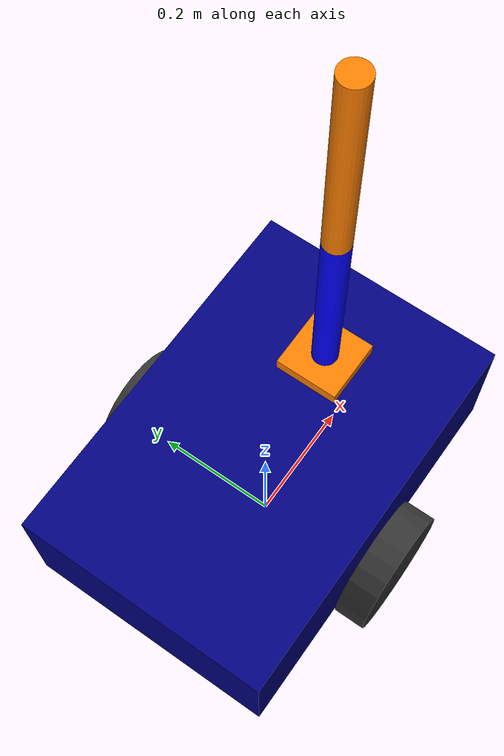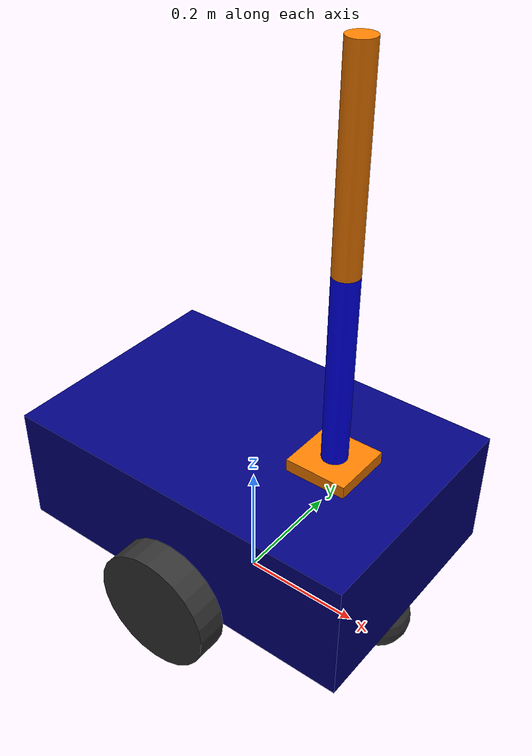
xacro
<?xml version="1.0"?>
<robot name="final_robot" xmlns:xacro="http://www.ros.org/wiki/xacro">

  <xacro:include filename="$(find final_robot_description)/urdf/common_properties.xacro"/>
  <xacro:include filename="$(find final_robot_description)/urdf/mobile_base.xacro"/>
  <xacro:include filename="$(find final_robot_description)/urdf/arm.xacro"/>

  <joint name="arm_base_joint" type="fixed">
  <parent link="base_link"/>
  <child link="arm_base_link"/>
  <origin xyz="${base_length/4} 0 ${base_height}" rpy="0 0 0"/>
</joint>

</robot>

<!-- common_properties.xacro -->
<robot xmlns:xacro="http://www.ros.org/wiki/xacro">

  <xacro:macro name="inertial_box" params="mass x y z">
  <inertial>
    <origin xyz="0 0 0" rpy="0 0 0"/>
    <mass value="${mass}"/>
    <inertia ixx="${(1/12)*mass*(y*y+z*z)}" ixy="0.0" ixz="0.0"
             iyy="${(1/12)*mass*(x*x+z*z)}" iyz="0.0"
             izz="${(1/12)*mass*(x*x+y*y)}"/>
  </inertial>
</xacro:macro>

 <xacro:macro name="inertial_cylinder" params="mass radius length">
  <inertial>
    <origin xyz="0 0 0" rpy="0 0 0"/>
    <mass value="${mass}"/>
    <inertia ixx="${(1/12)*mass*(3*radius*radius+length*length)}" ixy="0.0" ixz="0.0"
             iyy="${(1/12)*mass*(3*radius*radius+length*length)}" iyz="0.0"
             izz="${(1/2)*mass*(radius*radius)}"/>
  </inertial>
</xacro:macro>

<xacro:macro name="inertial_sphere" params="mass radius">
  <inertial>
    <origin xyz="0 0 0" rpy="0 0 0"/>
    <mass value="${mass}"/>
    <inertia ixx="${(2/5)*mass*(radius*radius)}" ixy="0.0" ixz="0.0"
             iyy="${(2/5)*mass*(radius*radius)}" iyz="0.0"
             izz="${(2/5)*mass*(radius*radius)}"/>
  </inertial>
</xacro:macro>

</robot>

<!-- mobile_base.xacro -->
<robot xmlns:xacro="http://www.ros.org/wiki/xacro">

  <!-- PROPERTIES -->
  <xacro:property name="base_length" value="0.6"/>
  <xacro:property name="base_width" value="0.4"/>
  <xacro:property name="base_height" value="0.2"/>
  <xacro:property name="wheel_radius" value="0.1"/>
  <xacro:property name="wheel_length" value="0.05"/>
  <xacro:property name="caster_wheel_radius" value="0.05"/>

  <!-- BASE FOOTPRINT -->
  <link name="base_footprint"/>

  <joint name="base_joint" type="fixed">
    <parent link="base_footprint"/>
    <child link="base_link"/>
    <origin xyz="0 0 ${wheel_radius}" rpy="0 0 0"/>
  </joint>

  <!-- BASE LINK -->
  <link name="base_link">
    <visual>
      <geometry>
        <box size="${base_length} ${base_width} ${base_height}"/>
      </geometry>
      <origin xyz="0 0 ${base_height/2}" rpy="0 0 0"/>
      <material name="blue">
        <color rgba="0 0 0.5 1"/>
      </material>
    </visual>
    <collision>
      <geometry>
        <box size="${base_length} ${base_width} ${base_height}"/>
      </geometry>
      <origin xyz="0 0 ${base_height/2}" rpy="0 0 0"/>
    </collision>
    <xacro:inertial_box mass="5.0" x="${base_length}" y="${base_width}" z="${base_height}"/>
  </link>

  <gazebo reference="base_link">
    <material>Gazebo/Blue</material>
  </gazebo>

  <!-- SOL TEKERLEK -->
  <link name="left_wheel_link">
    <visual>
      <geometry>
        <cylinder radius="${wheel_radius}" length="${wheel_length}"/>
      </geometry>
      <material name="dark_grey">
        <color rgba="0.2 0.2 0.2 1"/>
      </material>
    </visual>
    <collision>
      <geometry>
        <cylinder radius="${wheel_radius}" length="${wheel_length}"/>
      </geometry>
    </collision>
    <xacro:inertial_cylinder mass="0.2" radius="${wheel_radius}" length="${wheel_length}"/>
  </link>

  <joint name="left_wheel_joint" type="continuous">
    <parent link="base_link"/>
    <child link="left_wheel_link"/>
    <origin xyz="0 ${(base_width+wheel_length)/2} 0" rpy="${-pi/2} 0 0"/>
    <axis xyz="0 0 1"/>
  </joint>

  <gazebo reference="left_wheel_link">
    <material>Gazebo/DarkGrey</material>
  </gazebo>

  <!-- SAĞ TEKERLEK -->
  <link name="right_wheel_link">
    <visual>
      <geometry>
        <cylinder radius="${wheel_radius}" length="${wheel_length}"/>
      </geometry>
      <material name="dark_grey">
        <color rgba="0.2 0.2 0.2 1"/>
      </material>
    </visual>
    <collision>
      <geometry>
        <cylinder radius="${wheel_radius}" length="${wheel_length}"/>
      </geometry>
    </collision>
    <xacro:inertial_cylinder mass="0.2" radius="${wheel_radius}" length="${wheel_length}"/>
  </link>

  <joint name="right_wheel_joint" type="continuous">
    <parent link="base_link"/>
    <child link="right_wheel_link"/>
    <origin xyz="0 ${-(base_width+wheel_length)/2} 0" rpy="${-pi/2} 0 0"/>
    <axis xyz="0 0 1"/>
  </joint>

  <gazebo reference="right_wheel_link">
    <material>Gazebo/DarkGrey</material>
  </gazebo>

  <!-- CASTER WHEEL -->
  <link name="caster_wheel_link">
    <visual>
      <geometry>
        <sphere radius="${caster_wheel_radius}"/>
      </geometry>
      <material name="dark_grey">
        <color rgba="0.2 0.2 0.2 1"/>
      </material>
    </visual>
    <collision>
      <geometry>
        <sphere radius="${caster_wheel_radius}"/>
      </geometry>
    </collision>
    <xacro:inertial_sphere mass="0.1" radius="${caster_wheel_radius}"/>
  </link>

  <joint name="caster_wheel_joint" type="fixed">
    <parent link="base_link"/>
    <child link="caster_wheel_link"/>
    <origin xyz="${base_length/2-caster_wheel_radius} 0 ${-(base_height/2-caster_wheel_radius)}" rpy="0 0 0"/>
  </joint>

  <gazebo reference="caster_wheel_link">
    <material>Gazebo/DarkGrey</material>
    <mu1 value="0.1"/>
    <mu2 value="0.1"/>
  </gazebo>

  <!-- DIFF DRIVE PLUGIN -->
  <gazebo>
    <plugin filename="gz-sim-diff-drive-system"
            name="gz::sim::systems::DiffDrive">
      <left_joint>left_wheel_joint</left_joint>
      <right_joint>right_wheel_joint</right_joint>
      <wheel_separation>${base_width+wheel_length}</wheel_separation>
      <wheel_radius>${wheel_radius}</wheel_radius>
      <odom_publish_frequency>10</odom_publish_frequency>
      <frame_id>odom</frame_id>
      <child_frame_id>base_footprint</child_frame_id>
    </plugin>
  </gazebo>

  <!-- JOINT STATE PUBLISHER PLUGIN -->
  <gazebo>
    <plugin filename="gz-sim-joint-state-publisher-system"
            name="gz::sim::systems::JointStatePublisher">
      <joint_name>left_wheel_joint</joint_name>
      <joint_name>right_wheel_joint</joint_name>
    </plugin>
  </gazebo>

</robot>

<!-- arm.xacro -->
<robot name="final_robot" xmlns:xacro="http://www.ros.org/wiki/xacro">

  <!-- PROPERTIES -->
  <xacro:property name="arm_base_length" value="0.1"/>
  <xacro:property name="arm_base_width" value="0.1"/>
  <xacro:property name="arm_base_height" value="0.02"/>
  <xacro:property name="forearm_radius" value="0.02"/>
  <xacro:property name="forearm_length" value="0.3"/>
  <xacro:property name="hand_radius" value="0.02"/>
  <xacro:property name="hand_length" value="0.3"/>

   <link name="arm_base_link">
    <visual>
      <geometry>
        <box size="${arm_base_length} ${arm_base_width} ${arm_base_height}"/>
      </geometry>
      <origin xyz="0 0 ${arm_base_height/2}" rpy="0 0 0"/>
      <material name="orange">
       <color rgba= "1 0.5 0 1"/>
      </material>
    </visual>
    <collision>
      <geometry>
      <box size="${arm_base_length} ${arm_base_width} ${arm_base_height}"/>
      </geometry>
      <origin xyz="0 0 ${arm_base_height/2}" rpy="0 0 0"/>
    </collision>
    <xacro:inertial_box mass="0.5" x="${arm_base_length}" y="${arm_base_width}" z="${arm_base_height}"/>
  </link>

    <gazebo reference="arm_base_link">
      <material>Gazebo/Orange</material>
    </gazebo>

  <link name="forearm_link">
    <visual>
      <geometry>
        <cylinder radius="${forearm_radius}" length="${forearm_length}"/>
      </geometry>
      <origin xyz="0 0 ${forearm_length/2}" rpy="0 0 0"/>
      <material name="blue">
        <color rgba= "0 0 1 1"/>
      </material>
    </visual>
    <collision>
      <geometry>
      <cylinder radius="${forearm_radius}" length="${forearm_length}"/>
      </geometry>
      <origin xyz="0 0 ${forearm_length/2}" rpy="0 0 0"/>
    </collision>
    <xacro:inertial_cylinder mass="0.3" radius="${forearm_radius}" length="${forearm_length}"/>
    <gazebo reference="forearm_link">
      <material>Gazebo/Blue</material>
    </gazebo>
  </link>

   <link name="hand_link">
    <visual>
      <geometry>
        <cylinder radius="${hand_radius}" length="${hand_length}"/>
      </geometry>
      <origin xyz="0 0 ${hand_length/2}" rpy="0 0 0"/>
      <material name="orange">
        <color rgba= "1 0.5 0 1"/>
      </material>
    </visual>
    <collision>
      <geometry>
       <cylinder radius="${hand_radius}" length="${hand_length}"/>
      </geometry>
      <origin xyz="0 0 ${hand_length/2}" rpy="0 0 0"/>
    </collision>
    <xacro:inertial_cylinder mass="0.3" radius="${hand_radius}" length="${hand_length}"/>
    <gazebo reference="hand_link">
      <material>Gazebo/Orange</material>
    </gazebo>
  </link>

    <joint name="arm_base_to_forearm" type="revolute">
      <parent link="arm_base_link"/>
      <child link="forearm_link"/>
      <origin xyz="0 0 ${arm_base_height}" rpy="0 0 0"/>
      <axis xyz="0 1 0"/>
      <limit lower="0" upper="${pi/2}" effort="100" velocity="100"/>
      <dynamics friction="0.05" damping="0.1"/>
    </joint>

    <joint name="forearm_to_hand" type="revolute">
      <parent link="forearm_link"/>
      <child link="hand_link"/>
      <origin xyz="0 0 ${forearm_length}" rpy="0 0 0"/>
      <axis xyz="0 1 0"/>
      <limit lower="0" upper="${pi/2}" effort="100" velocity="100"/>
      <dynamics friction="0.05" damping="0.1"/>
    </joint>

    <gazebo>
     <plugin filename="gz-sim-joint-state-publisher-system"
        name="gz::sim::systems::JointStatePublisher">
     <joint_name>arm_base_to_forearm</joint_name>
     <joint_name>forearm_to_hand</joint_name>
     </plugin>
    </gazebo>

    <gazebo>
      <plugin filename="gz-sim-joint-position-controller-system"
        name="gz::sim::systems::JointPositionController">
       <joint_name>arm_base_to_forearm</joint_name>
       <p_gain>5.0</p_gain>
      </plugin>
    </gazebo>

    <gazebo>
      <plugin filename="gz-sim-joint-position-controller-system"
         name="gz::sim::systems::JointPositionController">
       <joint_name>forearm_to_hand</joint_name>
       <p_gain>3.0</p_gain>
      </plugin>
    </gazebo>

    </robot>
